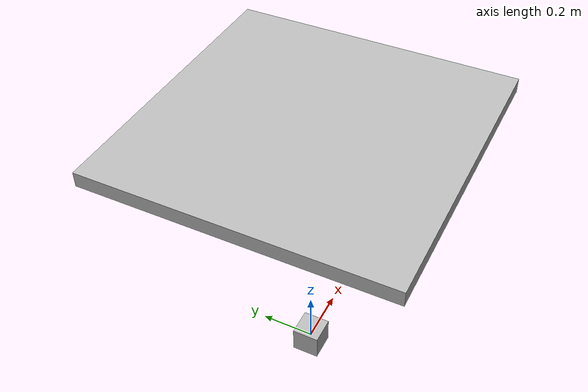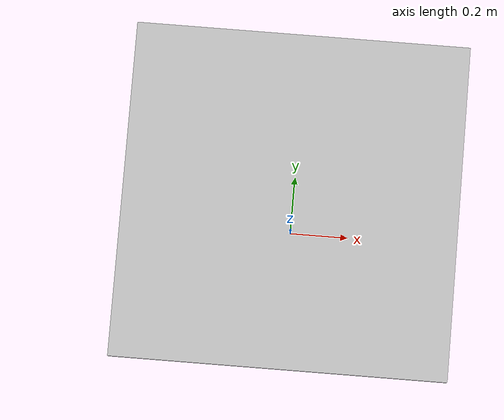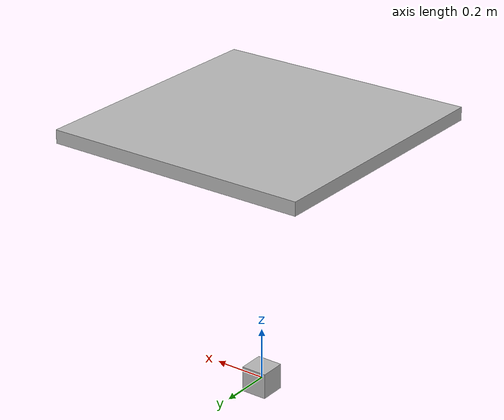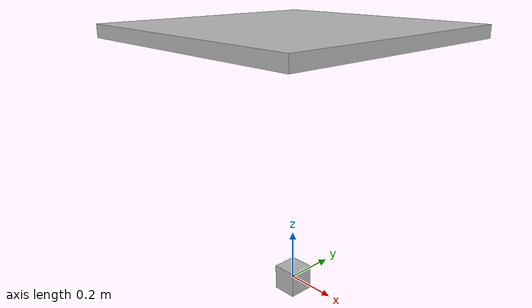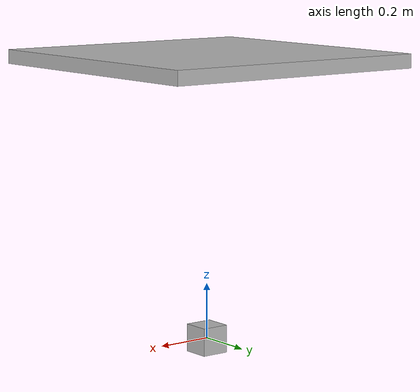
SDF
<sdf version='1.7'>
  <model name='mobile_platform'>
    <link name='ground_link'>
      <inertial>
        <pose>0 0 0 0 -0 0</pose>
        <mass>1</mass>
        <inertia>
          <ixx>0.00166667</ixx>
          <ixy>0</ixy>
          <ixz>0</ixz>
          <iyy>0.00166667</iyy>
          <iyz>0</iyz>
          <izz>0.00166667</izz>
        </inertia>
      </inertial>
      <collision name='ground_link_collision'>
        <pose>0 0 0 0 -0 0</pose>
        <geometry>
          <box>
            <size>0.1 0.1 0.1</size>
          </box>
        </geometry>
      </collision>
      <visual name='ground_link_visual'>
        <pose>0 0 0 0 -0 0</pose>
        <geometry>
          <box>
            <size>0.1 0.1 0.1</size>
          </box>
        </geometry>
      </visual>
    </link>
    <joint name='roll_revolute_joint' type='revolute'>
      <pose relative_to='ground_link'>0 0 1 0 -0 0</pose>
      <parent>ground_link</parent>
      <child>board_link</child>
      <axis>
        <xyz>1 0 0</xyz>
        <limit>
          <lower>-1.57</lower>
          <upper>1.57</upper>
          <effort>1</effort>
          <velocity>0.1</velocity>
        </limit>
        <dynamics>
          <damping>0.1</damping>
          <friction>0.1</friction>
          <spring_reference>0</spring_reference>
          <spring_stiffness>0</spring_stiffness>
        </dynamics>
      </axis>
    </joint>
    <link name='board_link'>
      <pose relative_to='roll_revolute_joint'>0 0 0 0 -0 0</pose>
      <inertial>
        <pose>0 0 0 0 -0 0</pose>
        <mass>1</mass>
        <inertia>
          <ixx>0.0835416</ixx>
          <ixy>0</ixy>
          <ixz>0</ixz>
          <iyy>0.0835416</iyy>
          <iyz>0</iyz>
          <izz>0.166667</izz>
        </inertia>
      </inertial>
      <collision name='board_link_collision'>
        <pose>0 0 0 0 -0 0</pose>
        <geometry>
          <box>
            <size>1 1 0.05</size>
          </box>
        </geometry>
      </collision>
      <visual name='board_link_visual'>
        <pose>0 0 0 0 -0 0</pose>
        <geometry>
          <box>
            <size>1 1 0.05</size>
          </box>
        </geometry>
      </visual>
    </link>
  </model>
</sdf>
